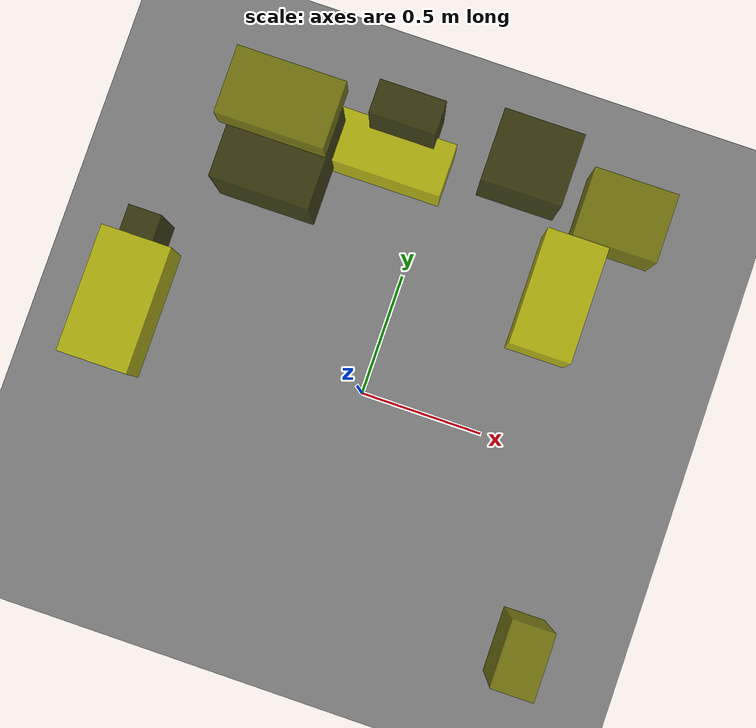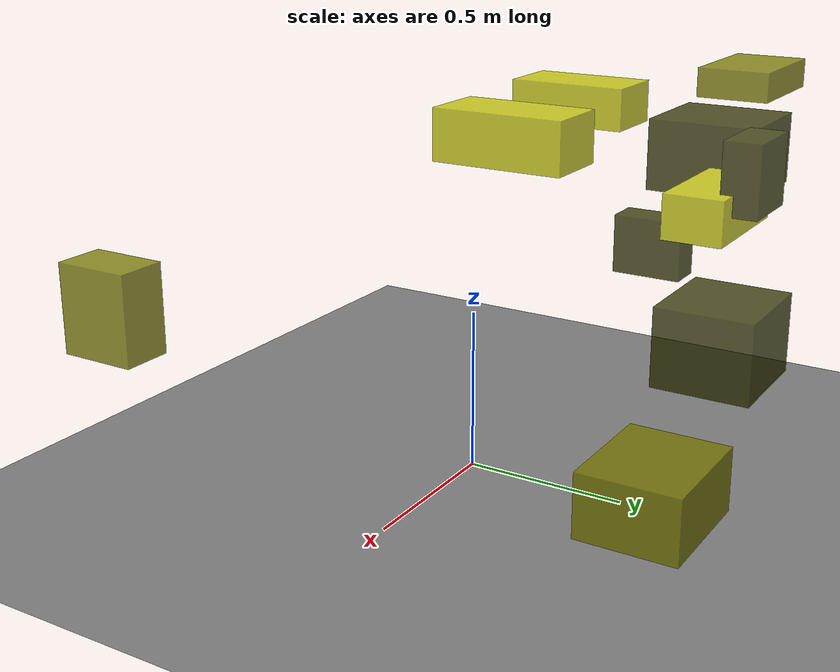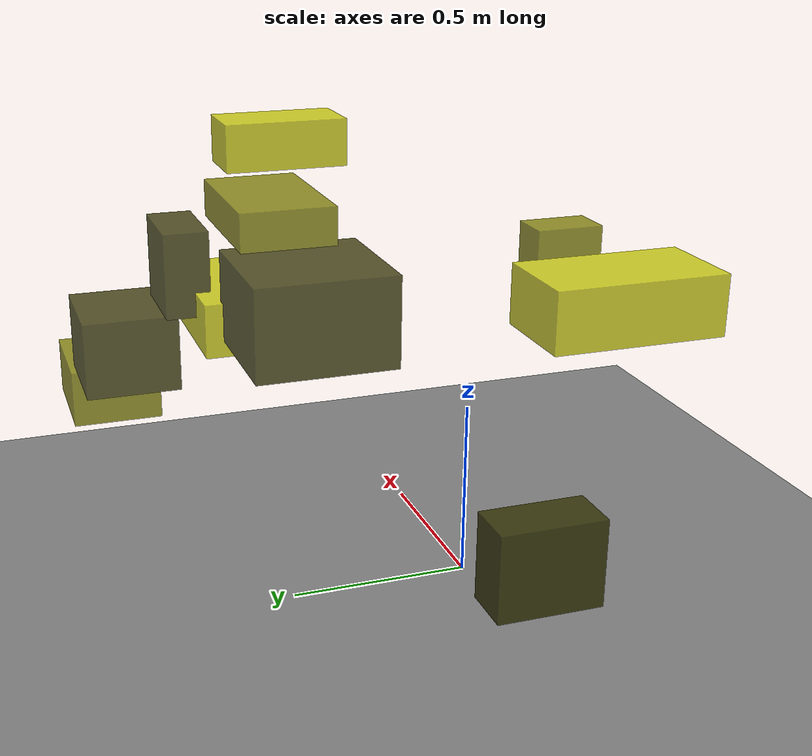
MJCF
<?xml version="1.0"?>
<mujoco model="obstacle_scene">
  <compiler angle="radian" coordinate="local"/>
  <option timestep="0.001" gravity="0 0 -9.81"/>

  <asset>
    <material name="obstacle_mat" rgba="0.8 0.8 0.0 0.8"/>
    <material name="ground_mat" rgba="0.5 0.5 0.5 1"/>
  </asset>

  <worldbody>
    <!-- Ground plane -->
    <geom name="ground" type="plane" size="3 3 0.1" material="ground_mat"/>

    <!-- Obstacles -->
    <body name="obstacle_0" pos="0.316497 0.883917 0.684073">
      <geom name="obs_0" type="box" size="0.139456 0.125695 0.103407" rgba="0.2 0.2 0.0 0.8"/>
    </body>
    <body name="obstacle_1" pos="-0.428680 0.668576 1.210131">
      <geom name="obs_1" type="box" size="0.163287 0.102319 0.041242" rgba="0.5 0.5 0.0 0.8"/>
    </body>
    <body name="obstacle_2" pos="-0.725716 -0.014841 1.036271">
      <geom name="obs_2" type="box" size="0.109050 0.197620 0.068998" rgba="0.8 0.8 0.0 0.8"/>
    </body>
    <body name="obstacle_3" pos="-0.432200 0.583445 0.984962">
      <geom name="obs_3" type="box" size="0.156322 0.161192 0.105552" rgba="0.2 0.2 0.0 0.8"/>
    </body>
    <body name="obstacle_4" pos="0.808762 -0.678248 0.632080">
      <geom name="obs_4" type="box" size="0.074226 0.116173 0.132926" rgba="0.5 0.5 0.0 0.8"/>
    </body>
    <body name="obstacle_5" pos="-0.111278 0.700524 0.904299">
      <geom name="obs_5" type="box" size="0.186556 0.085576 0.063848" rgba="0.8 0.8 0.0 0.8"/>
    </body>
    <body name="obstacle_6" pos="-0.876271 0.209635 0.531437">
      <geom name="obs_6" type="box" size="0.059835 0.121416 0.102243" rgba="0.2 0.2 0.0 0.8"/>
    </body>
    <body name="obstacle_7" pos="0.703072 0.880497 0.434983">
      <geom name="obs_7" type="box" size="0.155685 0.128465 0.082502" rgba="0.5 0.5 0.0 0.8"/>
    </body>
    <body name="obstacle_8" pos="0.494937 0.391362 1.172398">
      <geom name="obs_8" type="box" size="0.090585 0.172790 0.066533" rgba="0.8 0.8 0.0 0.8"/>
    </body>
    <body name="obstacle_9" pos="-0.093741 0.803163 1.010430">
      <geom name="obs_9" type="box" size="0.104179 0.053063 0.101705" rgba="0.2 0.2 0.0 0.8"/>
    </body>
  </worldbody>
</mujoco>
